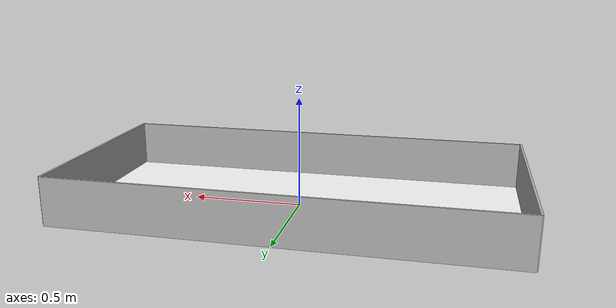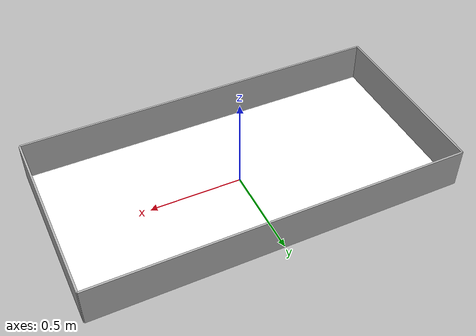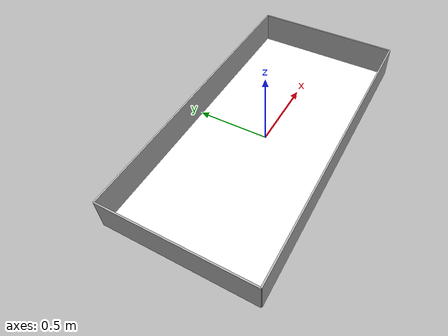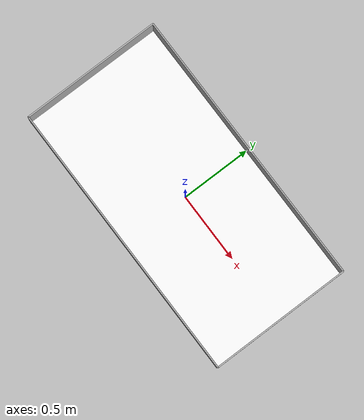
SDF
<?xml version="1.0" ?>
<sdf version="1.8">
  <world name="world_demo">
    <physics name="1ms" type="ignored">
      <max_step_size>0.001</max_step_size>
      <real_time_factor>1.0</real_time_factor>
    </physics>

    <plugin
      filename="gz-sim-physics-system"
      name="gz::sim::systems::Physics">
    </plugin>
    <plugin
      filename="gz-sim-sensors-system"
      name="gz::sim::systems::Sensors">
      <render_engine>ogre2</render_engine>
    </plugin>
    <plugin
      filename="gz-sim-user-commands-system"
      name="gz::sim::systems::UserCommands">
    </plugin>
    <plugin
      filename="gz-sim-scene-broadcaster-system"
      name="gz::sim::systems::SceneBroadcaster">
    </plugin>
    <plugin filename="gz-sim-imu-system"
        name="gz::sim::systems::Imu">
    </plugin>

    <!--light-->
    <light type="directional" name="sun">
      <cast_shadows>false</cast_shadows>
      <pose>0 0 2 0 0 0</pose>
      <diffuse>1 1 1 1</diffuse>
      <specular>1 1 1 1</specular>
      <attenuation>
        <range>1000</range>
        <constant>1</constant>
        <linear>0</linear>
        <quadratic>0</quadratic>
      </attenuation>
      <direction>0 0 -1</direction>
    </light>

    <model name="logo">
      <pose>0 0 0 0 0 0</pose>
      <static>true</static>
      <link name="logo_link">
        <visual name="logo_visual">
          <geometry>
            <plane>
              <normal>0 0 1</normal>
              <size>2 1</size>
            </plane>
          </geometry>
          <material>
            <diffuse>1 1 1 1</diffuse>
            <specular>0.5 0.5 0.5 1</specular>
            <pbr>
              <metal>
                <albedo_map>file://img/pinklab.jpg</albedo_map>
              </metal>
            </pbr>
          </material>
        </visual>
        <collision name="logo_collision">
          <geometry>
            <plane>
              <normal>0 0 1</normal>
              <size>2 1</size>
            </plane>
          </geometry>
          <surface>
            <contact>
              <collide_without_contact>true</collide_without_contact>
            </contact>
          </surface>
        </collision>
      </link>
    </model>

  <model name="wall_front">
    <static>true</static>
    <pose>0 0.5 0.11 0 0 0</pose>
    <link name="wall_link_front">
      <visual name="wall_visual_front">
        <geometry>
          <box>
            <size>2 0.01 0.22</size>
          </box>
        </geometry>
        <material>
          <diffuse>0.7 0.7 0.7 1</diffuse>
          <specular>0.2 0.2 0.2 1</specular>
        </material>
      </visual>
      <collision name="wall_collision_front">
        <geometry>
          <box>
            <size>2 0.01 0.22</size>
          </box>
        </geometry>
      </collision>
    </link>
  </model>

  <model name="wall_back">
    <static>true</static>
    <pose>0 -0.5 0.11 0 0 3.14</pose>
    <link name="wall_link_back">
      <visual name="wall_visual_back">
        <geometry>
          <box>
            <size>2 0.01 0.22</size>
          </box>
        </geometry>
        <material>
          <diffuse>0.7 0.7 0.7 1</diffuse>
          <specular>0.2 0.2 0.2 1</specular>
        </material>
      </visual>
      <collision name="wall_collision_back">
        <geometry>
          <box>
            <size>2 0.01 0.22</size>
          </box>
        </geometry>
      </collision>
    </link>
  </model>

  <model name="wall_left">
    <static>true</static>
    <pose>-1 0 0.11 0 0 1.57</pose>
    <link name="wall_link_left">
      <visual name="wall_visual_left">
        <geometry>
          <box>
            <size>1 0.01 0.22</size>
          </box>
        </geometry>
        <material>
          <diffuse>0.7 0.7 0.7 1</diffuse>
          <specular>0.2 0.2 0.2 1</specular>
        </material>
      </visual>
      <collision name="wall_collision_left">
        <geometry>
          <box>
            <size>1 0.01 0.22</size>
          </box>
        </geometry>
      </collision>
    </link>
  </model>

  <model name="wall_right">
    <static>true</static>
    <pose>1 0 0.11 0 0 -1.57</pose>
    <link name="wall_link_right">
      <visual name="wall_visual_right">
        <geometry>
          <box>
            <size>1 0.01 0.22</size>
          </box>
        </geometry>
        <material>
          <diffuse>0.7 0.7 0.7 1</diffuse>
          <specular>0.2 0.2 0.2 1</specular>
        </material>
      </visual>
      <collision name="wall_collision_right">
        <geometry>
          <box>
            <size>1 0.01 0.22</size>
          </box>
        </geometry>
      </collision>
    </link>
  </model>

  <model name="camera">
    <static>true</static>
      <pose>0 0 0.7 0 1.57 1.57</pose>
      <link name="link">
        <pose>0.05 0.05 0.05 0 0 0</pose>
        <inertial>
          <mass>0.1</mass>
          <inertia>
            <ixx>0.000166667</ixx>
            <iyy>0.000166667</iyy>
            <izz>0.000166667</izz>
          </inertia>
        </inertial>
        <collision name="collision">
          <geometry>
            <box>
              <size>0.1 0.1 0.1</size>
            </box>
          </geometry>
        </collision>
        <sensor name="camera" type="camera">
          <camera>
            <horizontal_fov>2.094</horizontal_fov>
            <image>
              <width>640</width>
              <height>480</height>
            </image>
            <clip>
              <near>0.1</near>
              <far>100</far>
            </clip>
          </camera>
          <always_on>1</always_on>
          <update_rate>30</update_rate>
          <visualize>true</visualize>
          <topic>camera</topic>
        </sensor>
      </link>
    </model>
  </world>
</sdf>
